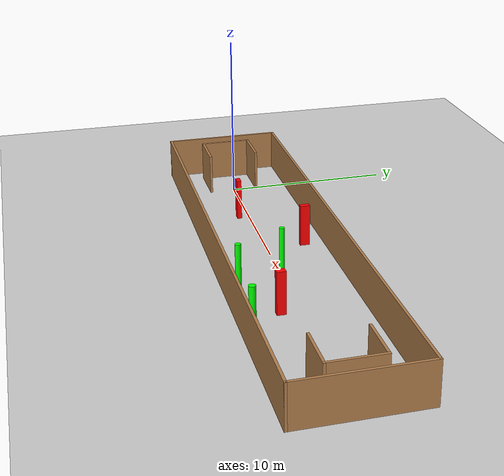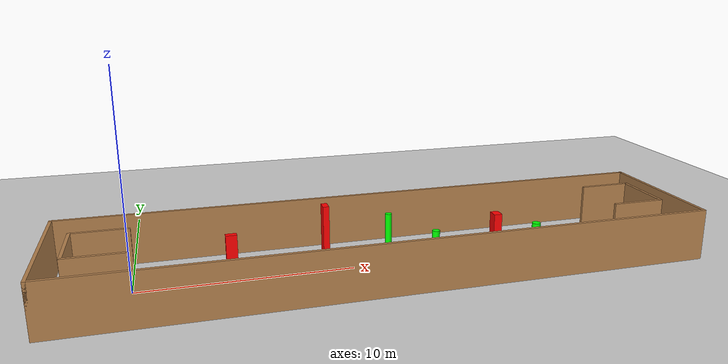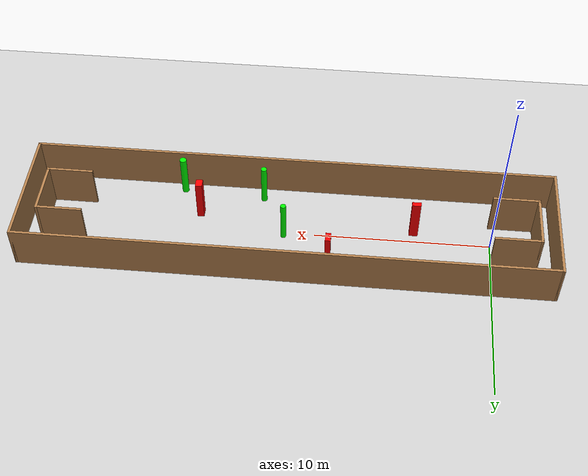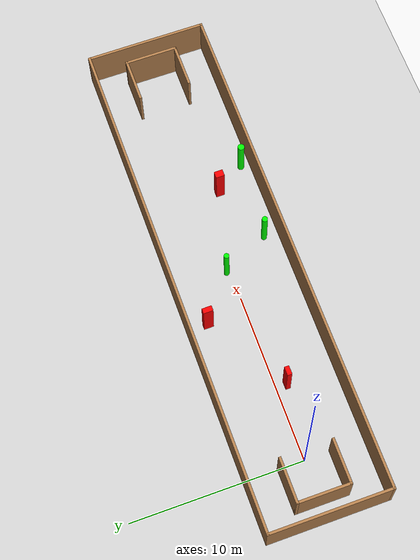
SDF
<sdf version="1.7">
 <world name="default">
  <light name="sun" type="directional">
   <pose>0 0 10 0 -0 0</pose>
   <diffuse>0.8 0.8 0.8 1</diffuse>
   <specular>0.2 0.2 0.2 1</specular>
   <attenuation>
    <range>1000</range>
    <constant>0.9</constant>
    <linear>0.01</linear>
    <quadratic>0.001</quadratic>
   </attenuation>
   <direction>-0.5 0.1 -0.9</direction>
   <spot><inner_angle>0</inner_angle><outer_angle>0</outer_angle><falloff>0</falloff></spot>
  </light>
  <model name="ground_plane">
   <static>1</static>
   <link name="link">
    <collision name="collision">
     <geometry><plane><normal>0 0 1</normal><size>100 100</size></plane></geometry>
     <surface>
      <contact><collide_bitmask>65535</collide_bitmask></contact>
      <friction><ode><mu>100</mu><mu2>50</mu2></ode></friction>
     </surface>
    </collision>
    <visual name="visual">
     <cast_shadows>0</cast_shadows>
     <geometry><plane><normal>0 0 1</normal><size>100 100</size></plane></geometry>
     <material>
      <script><uri>file://media/materials/scripts/gazebo.material</uri><name>Gazebo/Grey</name></script>
     </material>
    </visual>
   </link>
  </model>
  <gravity>0 0 -9.8</gravity>
  <magnetic_field>6e-06 2.3e-05 -4.2e-05</magnetic_field>
  <atmosphere type="adiabatic"/>
  <physics type="ode">
   <max_step_size>0.001</max_step_size>
   <real_time_factor>1</real_time_factor>
   <real_time_update_rate>1000</real_time_update_rate>
  </physics>
  <scene><ambient>0.4 0.4 0.4 1</ambient><background>0.7 0.7 0.7 1</background><shadows>1</shadows></scene>
  <spherical_coordinates>
   <surface_model>EARTH_WGS84</surface_model>
   <latitude_deg>0</latitude_deg>
   <longitude_deg>0</longitude_deg>
   <elevation>0</elevation>
   <heading_deg>0</heading_deg>
  </spherical_coordinates>
  <model name="my_base_walls">
   <link name="Wall_0">
    <collision name="Wall_0_Collision">
     <geometry><box><size>7.15 0.15 2.5</size></box></geometry>
     <pose>0 0 1.25 0 -0 0</pose>
    </collision>
    <visual name="Wall_0_Visual">
     <pose>0 0 1.25 0 -0 0</pose>
     <geometry><box><size>7.15 0.15 2.5</size></box></geometry>
     <material>
      <script><uri>file://media/materials/scripts/gazebo.material</uri><name>Gazebo/Wood</name></script>
      <ambient>1 1 1 1</ambient>
     </material>
     <meta><layer>0</layer></meta>
    </visual>
    <pose>-15 0 0 0 -0 1.5708</pose>
   </link>
   <link name="Wall_10">
    <collision name="Wall_10_Collision">
     <geometry><box><size>2.65 0.15 2.5</size></box></geometry>
     <pose>0 0 1.25 0 -0 0</pose>
    </collision>
    <visual name="Wall_10_Visual">
     <pose>0 0 1.25 0 -0 0</pose>
     <geometry><box><size>2.65 0.15 2.5</size></box></geometry>
     <material>
      <script><uri>file://media/materials/scripts/gazebo.material</uri><name>Gazebo/Wood</name></script>
      <ambient>1 1 1 1</ambient>
     </material>
     <meta><layer>0</layer></meta>
    </visual>
    <pose>-12.75 -1.5 0 0 -0 0</pose>
   </link>
   <link name="Wall_12">
    <collision name="Wall_12_Collision">
     <geometry><box><size>2.65 0.15 2.5</size></box></geometry>
     <pose>0 0 1.25 0 -0 0</pose>
    </collision>
    <visual name="Wall_12_Visual">
     <pose>0 0 1.25 0 -0 0</pose>
     <geometry><box><size>2.65 0.15 2.5</size></box></geometry>
     <material>
      <script><uri>file://media/materials/scripts/gazebo.material</uri><name>Gazebo/Wood</name></script>
      <ambient>1 1 1 1</ambient>
     </material>
     <meta><layer>0</layer></meta>
    </visual>
    <pose>-12.75 1.5 0 0 -0 0</pose>
   </link>
   <link name="Wall_14">
    <collision name="Wall_14_Collision">
     <geometry><box><size>3.15 0.15 2.5</size></box></geometry>
     <pose>0 0 1.25 0 -0 0</pose>
    </collision>
    <visual name="Wall_14_Visual">
     <pose>0 0 1.25 0 -0 0</pose>
     <geometry><box><size>3.15 0.15 2.5</size></box></geometry>
     <material>
      <script><uri>file://media/materials/scripts/gazebo.material</uri><name>Gazebo/Wood</name></script>
      <ambient>1 1 1 1</ambient>
     </material>
     <meta><layer>0</layer></meta>
    </visual>
    <pose>14 0 0 0 -0 -1.5708</pose>
   </link>
   <link name="Wall_15">
    <collision name="Wall_15_Collision">
     <geometry><box><size>2.65 0.15 2.5</size></box></geometry>
     <pose>0 0 1.25 0 -0 0</pose>
    </collision>
    <visual name="Wall_15_Visual">
     <pose>0 0 1.25 0 -0 0</pose>
     <geometry><box><size>2.65 0.15 2.5</size></box></geometry>
     <material>
      <script><uri>file://media/materials/scripts/gazebo.material</uri><name>Gazebo/Wood</name></script>
      <ambient>1 1 1 1</ambient>
     </material>
     <meta><layer>0</layer></meta>
    </visual>
    <pose>12.75 -1.5 0 0 -0 3.14159</pose>
   </link>
   <link name="Wall_17">
    <collision name="Wall_17_Collision">
     <geometry><box><size>2.65 0.15 2.5</size></box></geometry>
     <pose>0 0 1.25 0 -0 0</pose>
    </collision>
    <visual name="Wall_17_Visual">
     <pose>0 0 1.25 0 -0 0</pose>
     <geometry><box><size>2.65 0.15 2.5</size></box></geometry>
     <material>
      <script><uri>file://media/materials/scripts/gazebo.material</uri><name>Gazebo/Wood</name></script>
      <ambient>1 1 1 1</ambient>
     </material>
     <meta><layer>0</layer></meta>
    </visual>
    <pose>12.75 1.5 0 0 -0 3.14159</pose>
   </link>
   <link name="Wall_2">
    <collision name="Wall_2_Collision">
     <geometry><box><size>30.15 0.15 2.5</size></box></geometry>
     <pose>0 0 1.25 0 -0 0</pose>
    </collision>
    <visual name="Wall_2_Visual">
     <pose>0 0 1.25 0 -0 0</pose>
     <geometry><box><size>30.15 0.15 2.5</size></box></geometry>
     <material>
      <script><uri>file://media/materials/scripts/gazebo.material</uri><name>Gazebo/Wood</name></script>
      <ambient>1 1 1 1</ambient>
     </material>
     <meta><layer>0</layer></meta>
    </visual>
    <pose>-0 -3.5 0 0 -0 0</pose>
   </link>
   <link name="Wall_4">
    <collision name="Wall_4_Collision">
     <geometry><box><size>30.15 0.15 2.5</size></box></geometry>
     <pose>0 0 1.25 0 -0 0</pose>
    </collision>
    <visual name="Wall_4_Visual">
     <pose>0 0 1.25 0 -0 0</pose>
     <geometry><box><size>30.15 0.15 2.5</size></box></geometry>
     <material>
      <script><uri>file://media/materials/scripts/gazebo.material</uri><name>Gazebo/Wood</name></script>
      <ambient>1 1 1 1</ambient>
     </material>
     <meta><layer>0</layer></meta>
    </visual>
    <pose>-0 3.5 0 0 -0 0</pose>
   </link>
   <link name="Wall_6">
    <collision name="Wall_6_Collision">
     <geometry><box><size>7.15 0.15 2.5</size></box></geometry>
     <pose>0 0 1.25 0 -0 0</pose>
    </collision>
    <visual name="Wall_6_Visual">
     <pose>0 0 1.25 0 -0 0</pose>
     <geometry><box><size>7.15 0.15 2.5</size></box></geometry>
     <material>
      <script><uri>file://media/materials/scripts/gazebo.material</uri><name>Gazebo/Wood</name></script>
      <ambient>1 1 1 1</ambient>
     </material>
     <meta><layer>0</layer></meta>
    </visual>
    <pose>15 0 0 0 -0 -1.5708</pose>
   </link>
   <link name="Wall_9">
    <collision name="Wall_9_Collision">
     <geometry><box><size>3.15 0.15 2.5</size></box></geometry>
     <pose>0 0 1.25 0 -0 0</pose>
    </collision>
    <visual name="Wall_9_Visual">
     <pose>0 0 1.25 0 -0 0</pose>
     <geometry><box><size>3.15 0.15 2.5</size></box></geometry>
     <material>
      <script><uri>file://media/materials/scripts/gazebo.material</uri><name>Gazebo/Wood</name></script>
      <ambient>1 1 1 1</ambient>
     </material>
     <meta><layer>0</layer></meta>
    </visual>
    <pose>-14 0 0 0 -0 -1.5708</pose>
   </link>
   <static>1</static>
   <pose>11.5 0 0 0 -0 0</pose>
  </model>
  <model name="cylinder1">
   <static>1</static>
   <link name="link">
    <inertial>
     <mass>1</mass>
     <inertia><ixx>0.5</ixx><ixy>0</ixy><ixz>0</ixz><iyy>0.5</iyy><iyz>0</iyz><izz>1</izz></inertia>
    </inertial>
    <collision name="collision">
     <geometry><cylinder><radius>0.19312476042411586</radius><length>2.5</length></cylinder></geometry>
    </collision>
    <visual name="visual">
     <geometry><cylinder><radius>0.19312476042411586</radius><length>2.5</length></cylinder></geometry>
     <material>
      <ambient>0 1 0 1</ambient>
      <diffuse>0 1 0 1</diffuse>
      <specular>0.1 0.1 0.1 1</specular>
      <emissive>0 0 0 0</emissive>
     </material>
    </visual>
   </link>
   <pose>17.894158808559 -2.905665917089818 1.25 0 0 0</pose>
  </model>
  <model name="cylinder2">
   <static>1</static>
   <link name="link">
    <inertial>
     <mass>1</mass>
     <inertia><ixx>0.5</ixx><ixy>0</ixy><ixz>0</ixz><iyy>0.5</iyy><iyz>0</iyz><izz>1</izz></inertia>
    </inertial>
    <collision name="collision">
     <geometry><cylinder><radius>0.16888840698673463</radius><length>2.5</length></cylinder></geometry>
    </collision>
    <visual name="visual">
     <geometry><cylinder><radius>0.16888840698673463</radius><length>2.5</length></cylinder></geometry>
     <material>
      <ambient>0 1 0 1</ambient>
      <diffuse>0 1 0 1</diffuse>
      <specular>0.1 0.1 0.1 1</specular>
      <emissive>0 0 0 0</emissive>
     </material>
    </visual>
   </link>
   <pose>13.146782809497596 -2.5853322259183527 1.25 0 0 0</pose>
  </model>
  <model name="cylinder3">
   <static>1</static>
   <link name="link">
    <inertial>
     <mass>1</mass>
     <inertia><ixx>0.5</ixx><ixy>0</ixy><ixz>0</ixz><iyy>0.5</iyy><iyz>0</iyz><izz>1</izz></inertia>
    </inertial>
    <collision name="collision">
     <geometry><cylinder><radius>0.15565393068893105</radius><length>2.5</length></cylinder></geometry>
    </collision>
    <visual name="visual">
     <geometry><cylinder><radius>0.15565393068893105</radius><length>2.5</length></cylinder></geometry>
     <material>
      <ambient>0 1 0 1</ambient>
      <diffuse>0 1 0 1</diffuse>
      <specular>0.1 0.1 0.1 1</specular>
      <emissive>0 0 0 0</emissive>
     </material>
    </visual>
   </link>
   <pose>11.765754126454024 0.20604520954781824 1.25 0 0 0</pose>
  </model>
  <model name="box1">
   <static>1</static>
   <link name="link">
    <inertial>
     <mass>1</mass>
     <inertia><ixx>0.083</ixx><ixy>0</ixy><ixz>0</ixz><iyy>0.083</iyy><iyz>0</iyz><izz>0.083</izz></inertia>
    </inertial>
    <collision name="collision">
     <geometry><box><size>0.3884711457882031 0.5100205980070762 2.5</size></box></geometry>
    </collision>
    <visual name="visual">
     <geometry><box><size>0.3884711457882031 0.5100205980070762 2.5</size></box></geometry>
     <material>
      <ambient>1 0 0 1</ambient>
      <diffuse>1 0 0 1</diffuse>
      <specular>0.1 0.1 0.1 1</specular>
      <emissive>0 0 0 0</emissive>
     </material>
    </visual>
    <sensor name="my_contact" type="contact">
     <contact><collision>box_collision</collision><topic>__default_topic__</topic></contact>
    </sensor>
   </link>
   <pose>16.7018989261392 -1.1412626624681432 1.25 0 0 0</pose>
  </model>
  <model name="box2">
   <static>1</static>
   <link name="link">
    <inertial>
     <mass>1</mass>
     <inertia><ixx>0.083</ixx><ixy>0</ixy><ixz>0</ixz><iyy>0.083</iyy><iyz>0</iyz><izz>0.083</izz></inertia>
    </inertial>
    <collision name="collision">
     <geometry><box><size>0.3049432141002081 0.5701611087011365 2.5</size></box></geometry>
    </collision>
    <visual name="visual">
     <geometry><box><size>0.3049432141002081 0.5701611087011365 2.5</size></box></geometry>
     <material>
      <ambient>1 0 0 1</ambient>
      <diffuse>1 0 0 1</diffuse>
      <specular>0.1 0.1 0.1 1</specular>
      <emissive>0 0 0 0</emissive>
     </material>
    </visual>
    <sensor name="my_contact" type="contact">
     <contact><collision>box_collision</collision><topic>__default_topic__</topic></contact>
    </sensor>
   </link>
   <pose>9.1143520331146 2.274484992851116 1.25 0 0 0</pose>
  </model>
  <model name="box3">
   <static>1</static>
   <link name="link">
    <inertial>
     <mass>1</mass>
     <inertia><ixx>0.083</ixx><ixy>0</ixy><ixz>0</ixz><iyy>0.083</iyy><iyz>0</iyz><izz>0.083</izz></inertia>
    </inertial>
    <collision name="collision">
     <geometry><box><size>0.5038390254798957 0.2706387933500812 2.5</size></box></geometry>
    </collision>
    <visual name="visual">
     <geometry><box><size>0.5038390254798957 0.2706387933500812 2.5</size></box></geometry>
     <material>
      <ambient>1 0 0 1</ambient>
      <diffuse>1 0 0 1</diffuse>
      <specular>0.1 0.1 0.1 1</specular>
      <emissive>0 0 0 0</emissive>
     </material>
    </visual>
    <sensor name="my_contact" type="contact">
     <contact><collision>box_collision</collision><topic>__default_topic__</topic></contact>
    </sensor>
   </link>
   <pose>4.342766025736692 -0.6170753964762237 1.25 0 0 0</pose>
  </model>
 </world>
</sdf>
